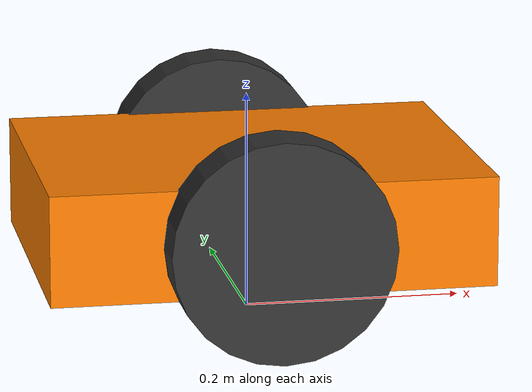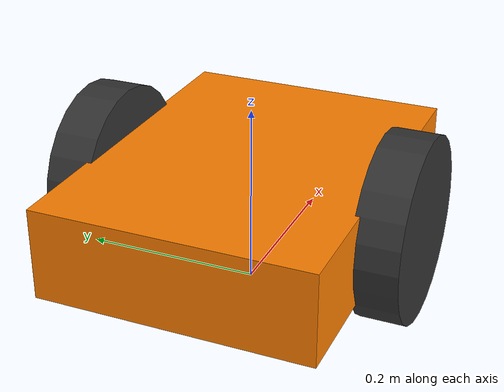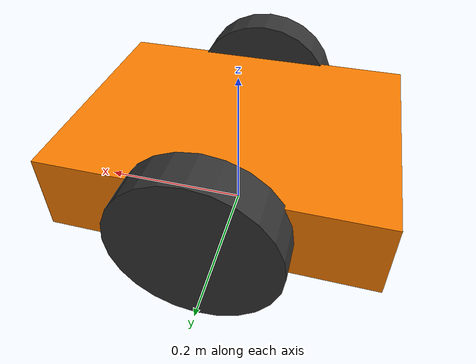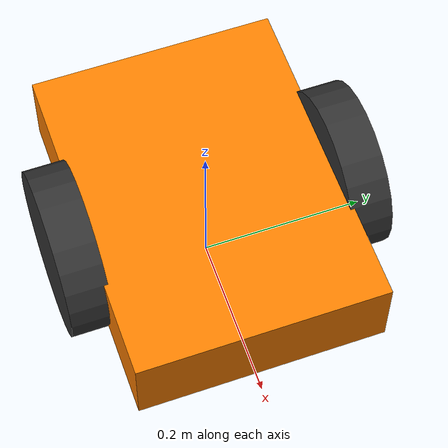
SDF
<?xml version="1.0" ?>
<sdf version="1.7">
  <world name="default">
    <model name="bolitabot">
      <pose>0 0 0.1 0 0 0</pose>

      <!-- Chasis -->
      <link name="chassis">
        <inertial>
          <mass>1.0</mass>
          <inertia>
            <ixx>0.1</ixx><ixy>0</ixy><ixz>0</ixz>
            <iyy>0.1</iyy><iyz>0</iyz><izz>0.1</izz>
          </inertia>
        </inertial>
        <visual name="visual">
          <geometry><box><size>0.4 0.3 0.1</size></box></geometry>
          <material>
            <ambient>1 0.5 0 1</ambient>
            <diffuse>1 0.5 0 1</diffuse>
          </material>
        </visual>
        <collision name="collision">
          <geometry><box><size>0.4 0.3 0.1</size></box></geometry>
        </collision>
      </link>

      <!-- Rueda izquierda -->
      <link name="left_wheel">
        <pose>0 0.17 0 -1.5707 0 0</pose>
        <inertial>
          <mass>0.2</mass>
          <inertia>
            <ixx>0.001</ixx><ixy>0</ixy><ixz>0</ixz>
            <iyy>0.001</iyy><iyz>0</iyz><izz>0.001</izz>
          </inertia>
        </inertial>
        <visual name="visual">
          <geometry><cylinder><radius>0.1</radius><length>0.05</length></cylinder></geometry>
          <material><ambient>0.2 0.2 0.2 1</ambient><diffuse>0.2 0.2 0.2 1</diffuse></material>
        </visual>
        <collision name="collision">
          <geometry><cylinder><radius>0.1</radius><length>0.05</length></cylinder></geometry>
        </collision>
      </link>

      <!-- Rueda derecha -->
      <link name="right_wheel">
        <pose>0 -0.17 0 -1.5707 0 0</pose>
        <inertial>
          <mass>0.2</mass>
          <inertia>
            <ixx>0.001</ixx><ixy>0</ixy><ixz>0</ixz>
            <iyy>0.001</iyy><iyz>0</iyz><izz>0.001</izz>
          </inertia>
        </inertial>
        <visual name="visual">
          <geometry><cylinder><radius>0.1</radius><length>0.05</length></cylinder></geometry>
          <material><ambient>0.2 0.2 0.2 1</ambient><diffuse>0.2 0.2 0.2 1</diffuse></material>
        </visual>
        <collision name="collision">
          <geometry><cylinder><radius>0.1</radius><length>0.05</length></cylinder></geometry>
        </collision>
      </link>

      <!-- Joint rueda izquierda -->
      <joint name="left_wheel_joint" type="revolute">
        <parent>chassis</parent>
        <child>left_wheel</child>
        <axis>
          <xyz>0 0 1</xyz>
          <limit><lower>-1e16</lower><upper>1e16</upper></limit>
        </axis>
      </joint>

      <!-- Joint rueda derecha -->
      <joint name="right_wheel_joint" type="revolute">
        <parent>chassis</parent>
        <child>right_wheel</child>
        <axis>
          <xyz>0 0 1</xyz>
          <limit><lower>-1e16</lower><upper>1e16</upper></limit>
        </axis>
      </joint>

      <!-- Plugin DiffDrive -->
      <plugin
        filename="gz-sim-diff-drive-system"
        name="gz::sim::systems::DiffDrive">
        <left_joint>left_wheel_joint</left_joint>
        <right_joint>right_wheel_joint</right_joint>
        <wheel_separation>0.34</wheel_separation>
        <wheel_radius>0.1</wheel_radius>
        <topic>/model/bolitabot/cmd_vel</topic>
        <odom_topic>/model/bolitabot/odometry</odom_topic>
        <tf_topic>/model/bolitabot/tf</tf_topic>
      </plugin>

    </model>
  </world>
</sdf>
